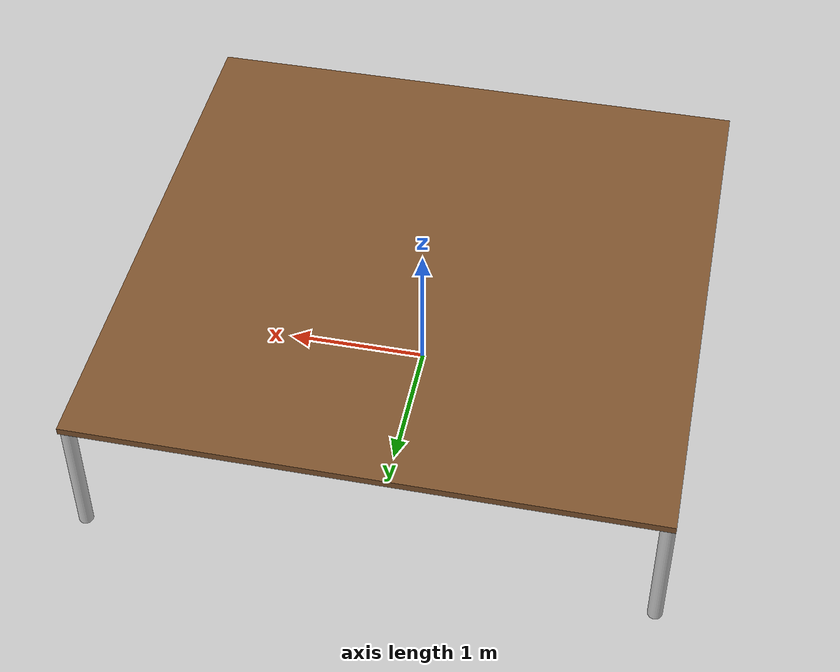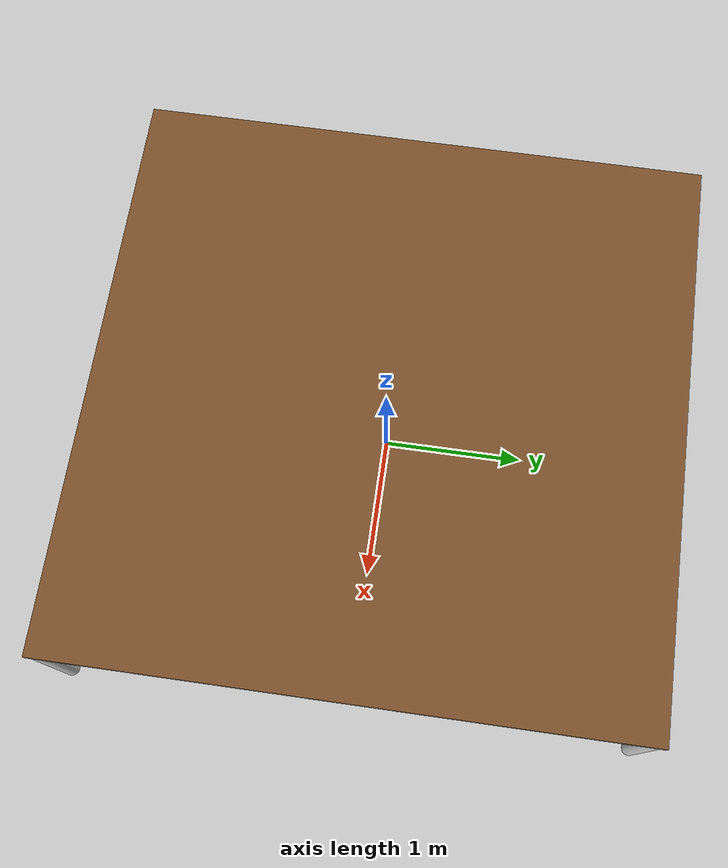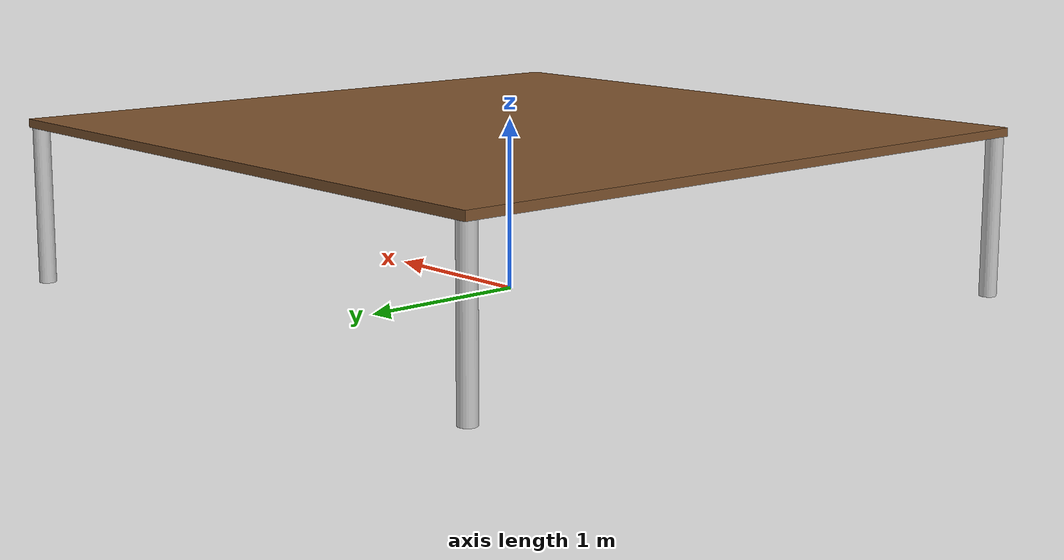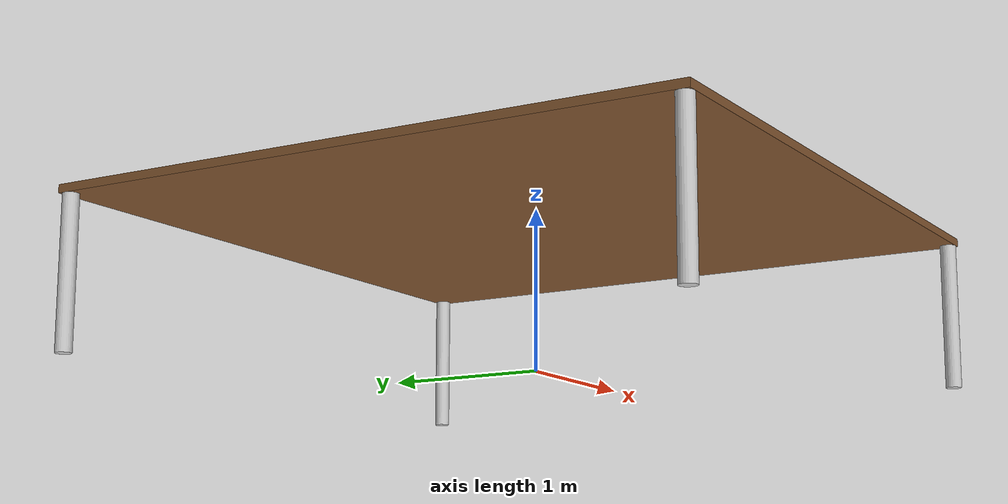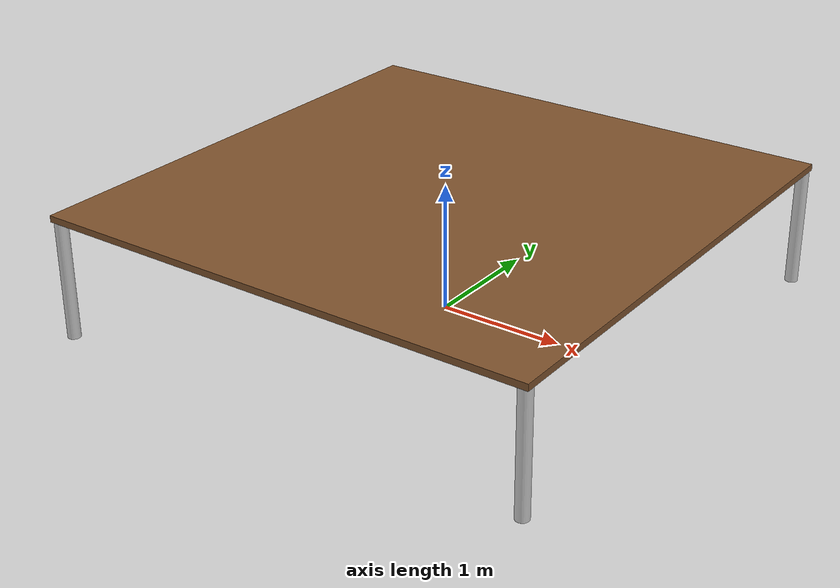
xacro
<?xml version="1.0" encoding="UTF-8"?>
<robot xmlns:xacro="http://wiki.ros.org/xacro" name="rrbot">

  <!-- copy and paste the contents of "rrbot_macro.xacro" here -->
  <xacro:include filename="materials.xacro" />
  <xacro:include filename="table_macro.xacro"/>

  <!-- create link fixed to the "world" -->
  <link name="world" />

  <!-- create the first table -->
  <xacro:table prefix="table1_" parent="world">
    <!-- position table in the world -->
    <origin xyz="0 0 0" rpy="0 0 0" />
  </xacro:table>

</robot>

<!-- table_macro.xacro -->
<robot xmlns:xacro="http://www.ros.org/wiki/xacro">

  <xacro:macro name="table" params="prefix parent *origin">

    <!-- Constants for robot dimensions -->
    <xacro:property name="width" value="4.00" /> <!-- Square dimensions (widthxwidth) of beams -->
    <xacro:property name="height" value="1" /> <!-- base_link -->
    <xacro:property name="table_thickness" value="0.05" /> <!-- link2 -->
    <xacro:property name="leg_length" value="${height-table_thickness}" /> <!-- link1 -->
    <xacro:property name= "table_length" value= "4.00"/>
    <xacro:property name="leg_radius" value="0.05" /> <!-- Space between top of beam and each joint -->

     <!-- joint from "world" to "top"-->
    <joint name="${prefix}world_to_top" type="fixed">
        <xacro:insert_block name="origin"/>
        <parent link="${parent}" />
        <child link="${prefix}top" />
    </joint>

    <!-- top -->
    <link name="${prefix}top">
        <visual>
        <origin rpy="0 0 0" xyz="0 0 ${height - table_thickness}" />
        <geometry>
            <box size="${width} ${table_length} ${table_thickness}" />
        </geometry>
        <material name="brown" />
        </visual>
    </link>

    <!-- joint from "top" to "leg1"-->
    <joint name="${prefix}leg1_joint" type="fixed">
        <origin rpy="0 0 0" xyz="0 -0 0" />
        <parent link="${prefix}top" />
        <child link="${prefix}leg1" />
    </joint>

    <!-- joint from leg1 to world -->

    <!-- Leg 1-->
    <link name="${prefix}leg1">
        <visual>
        <origin rpy="0 0 0" xyz="${(width/2)-leg_radius} ${-((table_length/2)-leg_radius)} ${leg_length/2}" />
        <geometry>
            <cylinder radius="${leg_radius}" length="${leg_length}"/>
        </geometry>
        <material name="light_grey" />
        </visual>
    </link>

    <!--Add joints for legs-->
    <!-- joint from "top" to "leg2"-->
    <joint name="${prefix}leg2_joint" type="fixed">
        <origin rpy="0 0 0" xyz="0 0 0" />
        <parent link="${prefix}top" />
        <child link="${prefix}leg2" />
    </joint>

    <!-- joint from leg2 to world -->

    <!-- Leg 2-->
    <link name="${prefix}leg2">
        <visual>
        <origin rpy="0 0 0" xyz="${(width/2)-leg_radius} ${((table_length/2)-leg_radius)} ${leg_length/2}" />
        <geometry>
            <cylinder radius="${leg_radius}" length="${leg_length}"/>
        </geometry>
        <material name="light_grey" />
        </visual>
    </link>

    <!-- joint from "top" to "leg3"-->
    <joint name="${prefix}leg3_joint" type="fixed">
        <origin rpy="0 0 0" xyz="-0 0 0" />
        <parent link="${prefix}top" />
        <child link="${prefix}leg3" />
    </joint>

    <!-- joint from leg3 to world -->

    <!-- Leg 3-->
    <link name="${prefix}leg3">
        <visual>
        <origin rpy="0 0 0" xyz="${-((width/2)-leg_radius)} ${((table_length/2)-leg_radius)} ${leg_length/2}" />
        <geometry>
            <cylinder radius="${leg_radius}" length="${leg_length}"/>
        </geometry>
        <material name="light_grey" />
        </visual>
    </link>

    <!-- joint from "top" to "leg4"-->
    <joint name="${prefix}leg4_joint" type="fixed">
        <origin rpy="0 0 0" xyz="-0 -0 0" />
        <parent link="${prefix}top" />
        <child link="${prefix}leg4" />
    </joint>

    <!-- joint from leg4 to world -->

<!-- Leg 4-->
    <link name="${prefix}leg4">
        <visual>
        <origin rpy="0 0 0" xyz="${-((width/2)-leg_radius)} ${-((table_length/2)-leg_radius)} ${leg_length/2}" />
        <geometry>
            <cylinder radius="${leg_radius}" length="${leg_length}"/>
        </geometry>
        <material name="light_grey" />
        </visual>
    </link>
  </xacro:macro>

</robot>
